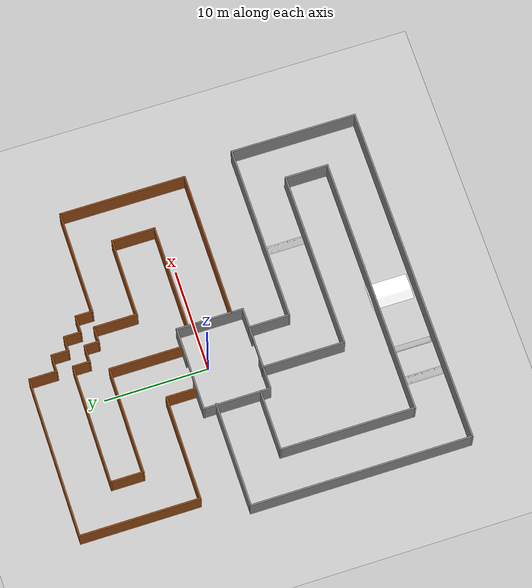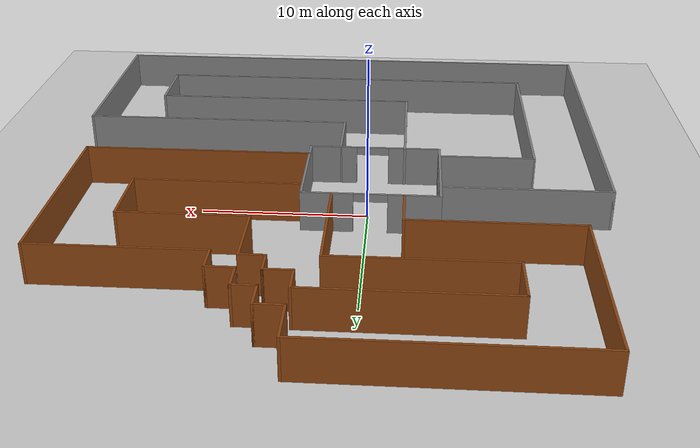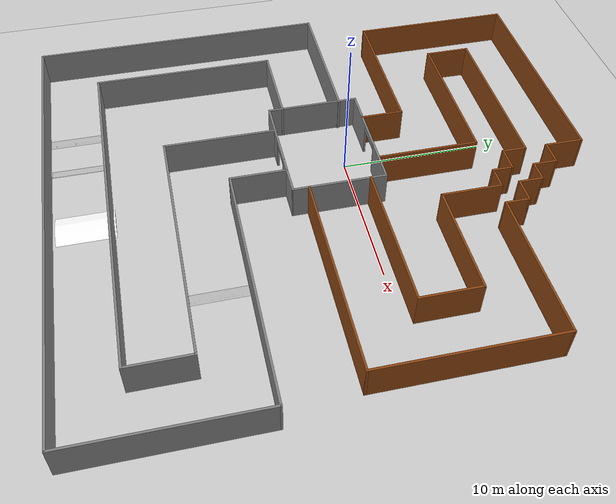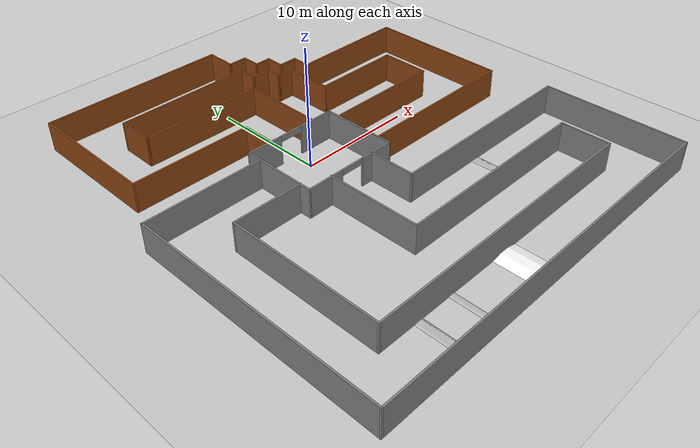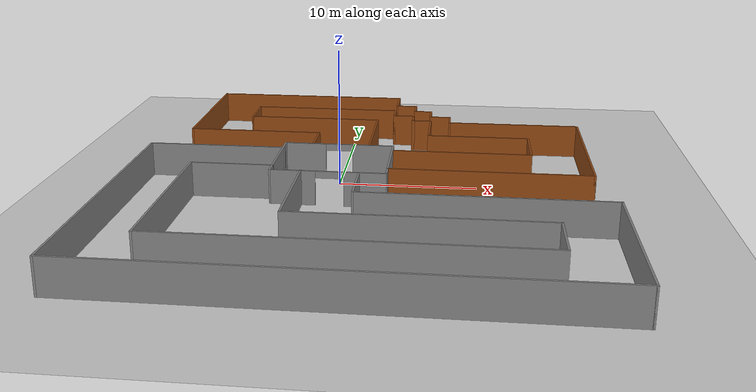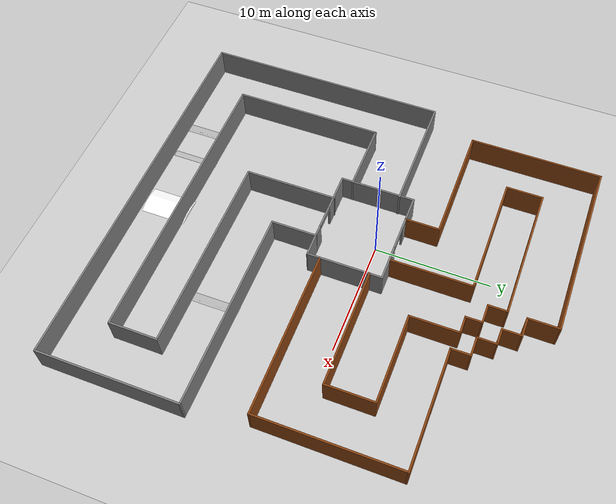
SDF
<sdf version="1.9">
 <world name="empty">
  <model name="ground_plane">
   <static>true</static>
   <link name="link">
    <collision name="collision">
     <geometry><plane><normal>0 0 1</normal><size>100 100</size></plane></geometry>
    </collision>
    <visual name="visual">
     <geometry><plane><normal>0 0 1</normal><size>100 100</size></plane></geometry>
     <material>
      <ambient>0.8 0.8 0.8 1</ambient>
      <diffuse>0.8 0.8 0.8 1</diffuse>
      <specular>0.8 0.8 0.8 1</specular>
     </material>
    </visual>
    <inertial>
     <mass>1</mass>
     <inertia><ixx>1</ixx><ixy>0</ixy><ixz>0</ixz><iyy>1</iyy><iyz>0</iyz><izz>1</izz></inertia>
    </inertial>
   </link>
  </model>
  <model name="speed_bump_2_short">
   <static>true</static>
   <link name="link">
    <collision name="collision">
     <geometry><mesh><uri>models/speed_bump_2_short//bump_1_060.dae</uri></mesh></geometry>
     <surface><friction><ode><mu>0.90000000000000002</mu><mu2>0.59999999999999998</mu2></ode></friction></surface>
    </collision>
    <visual name="visual">
     <geometry><mesh><uri>models/speed_bump_2_short//bump_1_060.dae</uri></mesh></geometry>
    </visual>
    <inertial>
     <mass>1</mass>
     <inertia><ixx>1</ixx><ixy>0</ixy><ixz>0</ixz><iyy>1</iyy><iyz>0</iyz><izz>1</izz></inertia>
    </inertial>
   </link>
   <pose>9.85442 -12.3222 0 0 -0 1.57586</pose>
  </model>
  <model name="ramp_2">
   <static>true</static>
   <link name="link">
    <collision name="collision">
     <geometry><mesh><uri>models/ramp_2//ramp_020.dae</uri></mesh></geometry>
     <surface><friction><ode><mu>0.90000000000000002</mu><mu2>0.59999999999999998</mu2></ode></friction></surface>
    </collision>
    <visual name="visual"><geometry><mesh><uri>models/ramp_2//ramp_020.dae</uri></mesh></geometry></visual>
    <inertial>
     <mass>1</mass>
     <inertia><ixx>1</ixx><ixy>0</ixy><ixz>0</ixz><iyy>1</iyy><iyz>0</iyz><izz>1</izz></inertia>
    </inertial>
   </link>
   <pose>0.806415 -20.267 0 0 -0 0</pose>
  </model>
  <model name="speed_bump_1">
   <static>true</static>
   <link name="link">
    <collision name="collision">
     <geometry><mesh><uri>models/speed_bump_1//bump_1.dae</uri></mesh></geometry>
     <surface><friction><ode><mu>0.90000000000000002</mu><mu2>0.59999999999999998</mu2></ode></friction></surface>
    </collision>
    <visual name="visual"><geometry><mesh><uri>models/speed_bump_1//bump_1.dae</uri></mesh></geometry></visual>
    <inertial>
     <mass>1</mass>
     <inertia><ixx>1</ixx><ixy>0</ixy><ixz>0</ixz><iyy>1</iyy><iyz>0</iyz><izz>1</izz></inertia>
    </inertial>
   </link>
   <pose>-3.19991 -20.3634 0 0 -0 1.57</pose>
  </model>
  <model name="speed_bump_2">
   <static>true</static>
   <link name="link">
    <collision name="collision">
     <geometry><mesh><uri>models/speed_bump_2//bump_2.dae</uri></mesh></geometry>
     <surface><friction><ode><mu>0.90000000000000002</mu><mu2>0.59999999999999998</mu2></ode></friction></surface>
    </collision>
    <visual name="visual"><geometry><mesh><uri>models/speed_bump_2//bump_2.dae</uri></mesh></geometry></visual>
    <inertial>
     <mass>1</mass>
     <inertia><ixx>1</ixx><ixy>0</ixy><ixz>0</ixz><iyy>1</iyy><iyz>0</iyz><izz>1</izz></inertia>
    </inertial>
   </link>
   <pose>-6.25773 -20.421 0 0 -0 1.57</pose>
  </model>
  <model name="indoor_no_doors_2">
   <pose>2.34714 -2.23549 0 0 -0 0</pose>
   <link name="Wall_1">
    <collision name="Wall_1_Collision">
     <geometry><box><size>33.5 0.15 2.5</size></box></geometry>
     <pose>0 0 1.25 0 -0 0</pose>
    </collision>
    <visual name="Wall_1_Visual">
     <pose>0 0 1.25 0 -0 0</pose>
     <geometry><box><size>33.5 0.15 2.5</size></box></geometry>
     <material>
      <ambient>0.5 0.5 0.5 1</ambient>
      <diffuse>0.5 0.5 0.5 1</diffuse>
      <specular>0.2 0.2 0.2 1</specular>
     </material>
     <meta><layer>0</layer></meta>
    </visual>
    <pose>1e-06 -18.2804 0 0 -0 0</pose>
    <inertial>
     <mass>1</mass>
     <inertia><ixx>1</ixx><ixy>0</ixy><ixz>0</ixz><iyy>1</iyy><iyz>0</iyz><izz>1</izz></inertia>
    </inertial>
   </link>
   <link name="Wall_10">
    <collision name="Wall_10_Collision">
     <geometry><box><size>25.25 0.15 2.5</size></box></geometry>
     <pose>0 0 1.25 0 -0 0</pose>
    </collision>
    <visual name="Wall_10_Visual">
     <pose>0 0 1.25 0 -0 0</pose>
     <geometry><box><size>25.25 0.15 2.5</size></box></geometry>
     <material>
      <ambient>0.5 0.5 0.5 1</ambient>
      <diffuse>0.5 0.5 0.5 1</diffuse>
      <specular>0.2 0.2 0.2 1</specular>
     </material>
     <meta><layer>0</layer></meta>
    </visual>
    <pose>0.064266 -14.2262 0 0 -0 3.14159</pose>
    <inertial>
     <mass>1</mass>
     <inertia><ixx>1</ixx><ixy>0</ixy><ixz>0</ixz><iyy>1</iyy><iyz>0</iyz><izz>1</izz></inertia>
    </inertial>
   </link>
   <link name="Wall_11">
    <collision name="Wall_11_Collision">
     <geometry><box><size>13 0.15 2.5</size></box></geometry>
     <pose>0 0 1.25 0 -0 0</pose>
    </collision>
    <visual name="Wall_11_Visual">
     <pose>0 0 1.25 0 -0 0</pose>
     <geometry><box><size>13 0.15 2.5</size></box></geometry>
     <material>
      <ambient>0.5 0.5 0.5 1</ambient>
      <diffuse>0.5 0.5 0.5 1</diffuse>
      <specular>0.2 0.2 0.2 1</specular>
     </material>
     <meta><layer>0</layer></meta>
    </visual>
    <pose>-12.4857 -7.80119 0 0 -0 1.5708</pose>
    <inertial>
     <mass>1</mass>
     <inertia><ixx>1</ixx><ixy>0</ixy><ixz>0</ixz><iyy>1</iyy><iyz>0</iyz><izz>1</izz></inertia>
    </inertial>
   </link>
   <link name="Wall_12">
    <collision name="Wall_12_Collision">
     <geometry><box><size>6 0.15 2.5</size></box></geometry>
     <pose>0 0 1.25 0 -0 0</pose>
    </collision>
    <visual name="Wall_12_Visual">
     <pose>0 0 1.25 0 -0 0</pose>
     <geometry><box><size>6 0.15 2.5</size></box></geometry>
     <material>
      <ambient>0.5 0.5 0.5 1</ambient>
      <diffuse>0.5 0.5 0.5 1</diffuse>
      <specular>0.2 0.2 0.2 1</specular>
     </material>
     <meta><layer>0</layer></meta>
    </visual>
    <pose>-9.56073 -1.37619 0 0 -0 0</pose>
    <inertial>
     <mass>1</mass>
     <inertia><ixx>1</ixx><ixy>0</ixy><ixz>0</ixz><iyy>1</iyy><iyz>0</iyz><izz>1</izz></inertia>
    </inertial>
   </link>
   <link name="Wall_14">
    <collision name="Wall_14_Collision">
     <geometry><box><size>21.25 0.15 2.5</size></box></geometry>
     <pose>0 0 1.25 0 -0 0</pose>
    </collision>
    <visual name="Wall_14_Visual">
     <pose>0 0 1.25 0 -0 0</pose>
     <geometry><box><size>21.25 0.15 2.5</size></box></geometry>
     <material>
      <ambient>0.5 0.5 0.5 1</ambient>
      <diffuse>0.5 0.5 0.5 1</diffuse>
      <specular>0.2 0.2 0.2 1</specular>
     </material>
     <meta><layer>0</layer></meta>
    </visual>
    <pose>-16.675 -7.73042 0 0 -0 1.5708</pose>
    <inertial>
     <mass>1</mass>
     <inertia><ixx>1</ixx><ixy>0</ixy><ixz>0</ixz><iyy>1</iyy><iyz>0</iyz><izz>1</izz></inertia>
    </inertial>
   </link>
   <link name="Wall_15">
    <collision name="Wall_15_Collision">
     <geometry><box><size>10.25 0.15 2.5</size></box></geometry>
     <pose>0 0 1.25 0 -0 0</pose>
    </collision>
    <visual name="Wall_15_Visual">
     <pose>0 0 1.25 0 -0 0</pose>
     <geometry><box><size>10.25 0.15 2.5</size></box></geometry>
     <material>
      <ambient>0.5 0.5 0.5 1</ambient>
      <diffuse>0.5 0.5 0.5 1</diffuse>
      <specular>0.2 0.2 0.2 1</specular>
     </material>
     <meta><layer>0</layer></meta>
    </visual>
    <pose>-11.625 2.81958 0 0 -0 0</pose>
    <inertial>
     <mass>1</mass>
     <inertia><ixx>1</ixx><ixy>0</ixy><ixz>0</ixz><iyy>1</iyy><iyz>0</iyz><izz>1</izz></inertia>
    </inertial>
   </link>
   <link name="Wall_17">
    <collision name="Wall_17_Collision">
     <geometry><box><size>6.5 0.15 2.5</size></box></geometry>
     <pose>0 0 1.25 0 -0 0</pose>
    </collision>
    <visual name="Wall_17_Visual">
     <pose>0 0 1.25 0 -0 0</pose>
     <geometry><box><size>6.5 0.15 2.5</size></box></geometry>
     <material>
      <ambient>0.5 0.5 0.5 1</ambient>
      <diffuse>0.5 0.5 0.5 1</diffuse>
      <specular>0.2 0.2 0.2 1</specular>
     </material>
     <meta><layer>0</layer></meta>
    </visual>
    <pose>-6.65095 0.864976 0 0 0 -1.5708</pose>
    <inertial>
     <mass>1</mass>
     <inertia><ixx>1</ixx><ixy>0</ixy><ixz>0</ixz><iyy>1</iyy><iyz>0</iyz><izz>1</izz></inertia>
    </inertial>
   </link>
   <link name="Wall_2">
    <collision name="Wall_2_Collision">
     <geometry><box><size>12.25 0.15 2.5</size></box></geometry>
     <pose>0 0 1.25 0 -0 0</pose>
    </collision>
    <visual name="Wall_2_Visual">
     <pose>0 0 1.25 0 -0 0</pose>
     <geometry><box><size>12.25 0.15 2.5</size></box></geometry>
     <material>
      <ambient>0.5 0.5 0.5 1</ambient>
      <diffuse>0.5 0.5 0.5 1</diffuse>
      <specular>0.2 0.2 0.2 1</specular>
     </material>
     <meta><layer>0</layer></meta>
    </visual>
    <pose>16.675 -12.2304 0 0 -0 1.5708</pose>
    <inertial>
     <mass>1</mass>
     <inertia><ixx>1</ixx><ixy>0</ixy><ixz>0</ixz><iyy>1</iyy><iyz>0</iyz><izz>1</izz></inertia>
    </inertial>
   </link>
   <link name="Wall_24">
    <pose>-2.60095 4.03998 0 0 -0 0</pose>
    <visual name="Wall_24_Visual_0">
     <pose>-2.55487 0 1.25 0 -0 0</pose>
     <geometry><box><size>3.14026 0.15 2.5</size></box></geometry>
     <material>
      <ambient>0.5 0.5 0.5 1</ambient>
      <diffuse>0.5 0.5 0.5 1</diffuse>
      <specular>0.2 0.2 0.2 1</specular>
     </material>
     <meta><layer>0</layer></meta>
    </visual>
    <collision name="Wall_24_Collision_0">
     <geometry><box><size>3.14026 0.15 2.5</size></box></geometry>
     <pose>-2.55487 0 1.25 0 -0 0</pose>
    </collision>
    <visual name="Wall_24_Visual_1">
     <pose>2.57013 0 1.25 0 -0 0</pose>
     <geometry><box><size>3.10974 0.15 2.5</size></box></geometry>
     <material>
      <ambient>0.5 0.5 0.5 1</ambient>
      <diffuse>0.5 0.5 0.5 1</diffuse>
      <specular>0.2 0.2 0.2 1</specular>
     </material>
     <meta><layer>0</layer></meta>
    </visual>
    <collision name="Wall_24_Collision_1">
     <geometry><box><size>3.10974 0.15 2.5</size></box></geometry>
     <pose>2.57013 0 1.25 0 -0 0</pose>
    </collision>
    <visual name="Wall_24_Visual_2">
     <pose>0.015256 0 2.25 0 -0 0</pose>
     <geometry><box><size>2 0.15 0.5</size></box></geometry>
     <material>
      <ambient>0.5 0.5 0.5 1</ambient>
      <diffuse>0.5 0.5 0.5 1</diffuse>
      <specular>0.2 0.2 0.2 1</specular>
     </material>
     <meta><layer>0</layer></meta>
    </visual>
    <collision name="Wall_24_Collision_2">
     <geometry><box><size>2 0.15 0.5</size></box></geometry>
     <pose>0.015256 0 2.25 0 -0 0</pose>
    </collision>
    <inertial>
     <mass>1</mass>
     <inertia><ixx>1</ixx><ixy>0</ixy><ixz>0</ixz><iyy>1</iyy><iyz>0</iyz><izz>1</izz></inertia>
    </inertial>
   </link>
   <link name="Wall_27">
    <collision name="Wall_27_Collision">
     <geometry><box><size>6.5 0.15 2.5</size></box></geometry>
     <pose>0 0 1.25 0 -0 0</pose>
    </collision>
    <visual name="Wall_27_Visual">
     <pose>0 0 1.25 0 -0 0</pose>
     <geometry><box><size>6.5 0.15 2.5</size></box></geometry>
     <material>
      <ambient>0.5 0.5 0.5 1</ambient>
      <diffuse>0.5 0.5 0.5 1</diffuse>
      <specular>0.2 0.2 0.2 1</specular>
     </material>
     <meta><layer>0</layer></meta>
    </visual>
    <pose>1.44905 0.864976 0 0 0 -1.5708</pose>
    <inertial>
     <mass>1</mass>
     <inertia><ixx>1</ixx><ixy>0</ixy><ixz>0</ixz><iyy>1</iyy><iyz>0</iyz><izz>1</izz></inertia>
    </inertial>
   </link>
   <link name="Wall_29">
    <collision name="Wall_29_Collision">
     <geometry><box><size>2.02416 0.15 2.5</size></box></geometry>
     <pose>0 0 1.25 0 -0 0</pose>
    </collision>
    <visual name="Wall_29_Visual">
     <pose>0 0 1.25 0 -0 0</pose>
     <geometry><box><size>2.02416 0.15 2.5</size></box></geometry>
     <material>
      <ambient>0.5 0.5 0.5 1</ambient>
      <diffuse>0.5 0.5 0.5 1</diffuse>
      <specular>0.2 0.2 0.2 1</specular>
     </material>
     <meta><layer>0</layer></meta>
    </visual>
    <pose>0.512027 -2.32022 0 0 0 -3.13071</pose>
    <inertial>
     <mass>1</mass>
     <inertia><ixx>1</ixx><ixy>0</ixy><ixz>0</ixz><iyy>1</iyy><iyz>0</iyz><izz>1</izz></inertia>
    </inertial>
   </link>
   <link name="Wall_3">
    <collision name="Wall_3_Collision">
     <geometry><box><size>17.25 0.15 2.5</size></box></geometry>
     <pose>0 0 1.25 0 -0 0</pose>
    </collision>
    <visual name="Wall_3_Visual">
     <pose>0 0 1.25 0 -0 0</pose>
     <geometry><box><size>17.25 0.15 2.5</size></box></geometry>
     <material>
      <ambient>0.5 0.5 0.5 1</ambient>
      <diffuse>0.5 0.5 0.5 1</diffuse>
      <specular>0.2 0.2 0.2 1</specular>
     </material>
     <meta><layer>0</layer></meta>
    </visual>
    <pose>8.125 -6.18042 0 0 -0 3.14159</pose>
    <inertial>
     <mass>1</mass>
     <inertia><ixx>1</ixx><ixy>0</ixy><ixz>0</ixz><iyy>1</iyy><iyz>0</iyz><izz>1</izz></inertia>
    </inertial>
   </link>
   <link name="Wall_31">
    <collision name="Wall_31_Collision">
     <geometry><box><size>14.25 0.15 2.5</size></box></geometry>
     <pose>0 0 1.25 0 -0 0</pose>
    </collision>
    <visual name="Wall_31_Visual">
     <pose>0 0 1.25 0 -0 0</pose>
     <geometry><box><size>14.25 0.15 2.5</size></box></geometry>
     <material>
      <ambient>0.55 0.27 0.07 1</ambient>
      <diffuse>0.55 0.27 0.07 1</diffuse>
      <specular>0.2 0.2 0.1 1</specular>
     </material>
     <meta><layer>0</layer></meta>
    </visual>
    <pose>8.54753 -1.21958 0 0 -0 0</pose>
    <inertial>
     <mass>1</mass>
     <inertia><ixx>1</ixx><ixy>0</ixy><ixz>0</ixz><iyy>1</iyy><iyz>0</iyz><izz>1</izz></inertia>
    </inertial>
   </link>
   <link name="Wall_32">
    <collision name="Wall_32_Collision">
     <geometry><box><size>12.25 0.15 2.5</size></box></geometry>
     <pose>0 0 1.25 0 -0 0</pose>
    </collision>
    <visual name="Wall_32_Visual">
     <pose>0 0 1.25 0 -0 0</pose>
     <geometry><box><size>12.25 0.15 2.5</size></box></geometry>
     <material>
      <ambient>0.55 0.27 0.07 1</ambient>
      <diffuse>0.55 0.27 0.07 1</diffuse>
      <specular>0.2 0.2 0.1 1</specular>
     </material>
     <meta><layer>0</layer></meta>
    </visual>
    <pose>15.5975 4.83042 0 0 -0 1.5708</pose>
    <inertial>
     <mass>1</mass>
     <inertia><ixx>1</ixx><ixy>0</ixy><ixz>0</ixz><iyy>1</iyy><iyz>0</iyz><izz>1</izz></inertia>
    </inertial>
   </link>
   <link name="Wall_33">
    <collision name="Wall_33_Collision">
     <geometry><box><size>10.25 0.15 2.5</size></box></geometry>
     <pose>0 0 1.25 0 -0 0</pose>
    </collision>
    <visual name="Wall_33_Visual">
     <pose>0 0 1.25 0 -0 0</pose>
     <geometry><box><size>10.25 0.15 2.5</size></box></geometry>
     <material>
      <ambient>0.55 0.27 0.07 1</ambient>
      <diffuse>0.55 0.27 0.07 1</diffuse>
      <specular>0.2 0.2 0.1 1</specular>
     </material>
     <meta><layer>0</layer></meta>
    </visual>
    <pose>10.5475 10.8804 0 0 -0 3.14159</pose>
    <inertial>
     <mass>1</mass>
     <inertia><ixx>1</ixx><ixy>0</ixy><ixz>0</ixz><iyy>1</iyy><iyz>0</iyz><izz>1</izz></inertia>
    </inertial>
   </link>
   <link name="Wall_35">
    <collision name="Wall_35_Collision">
     <geometry><box><size>4.25 0.15 2.5</size></box></geometry>
     <pose>0 0 1.25 0 -0 0</pose>
    </collision>
    <visual name="Wall_35_Visual">
     <pose>0 0 1.25 0 -0 0</pose>
     <geometry><box><size>4.25 0.15 2.5</size></box></geometry>
     <material>
      <ambient>0.55 0.27 0.07 1</ambient>
      <diffuse>0.55 0.27 0.07 1</diffuse>
      <specular>0.2 0.2 0.1 1</specular>
     </material>
     <meta><layer>0</layer></meta>
    </visual>
    <pose>3.95699 9.13887 0 0 0 -1.5708</pose>
    <inertial>
     <mass>1</mass>
     <inertia><ixx>1</ixx><ixy>0</ixy><ixz>0</ixz><iyy>1</iyy><iyz>0</iyz><izz>1</izz></inertia>
    </inertial>
   </link>
   <link name="Wall_36">
    <collision name="Wall_36_Collision">
     <geometry><box><size>7.75 0.15 2.5</size></box></geometry>
     <pose>0 0 1.25 0 -0 0</pose>
    </collision>
    <visual name="Wall_36_Visual">
     <pose>0 0 1.25 0 -0 0</pose>
     <geometry><box><size>7.75 0.15 2.5</size></box></geometry>
     <material>
      <ambient>0.55 0.27 0.07 1</ambient>
      <diffuse>0.55 0.27 0.07 1</diffuse>
      <specular>0.2 0.2 0.1 1</specular>
     </material>
     <meta><layer>0</layer></meta>
    </visual>
    <pose>7.75699 7.08887 0 0 -0 0</pose>
    <inertial>
     <mass>1</mass>
     <inertia><ixx>1</ixx><ixy>0</ixy><ixz>0</ixz><iyy>1</iyy><iyz>0</iyz><izz>1</izz></inertia>
    </inertial>
   </link>
   <link name="Wall_37">
    <collision name="Wall_37_Collision">
     <geometry><box><size>4.25 0.15 2.5</size></box></geometry>
     <pose>0 0 1.25 0 -0 0</pose>
    </collision>
    <visual name="Wall_37_Visual">
     <pose>0 0 1.25 0 -0 0</pose>
     <geometry><box><size>4.25 0.15 2.5</size></box></geometry>
     <material>
      <ambient>0.55 0.27 0.07 1</ambient>
      <diffuse>0.55 0.27 0.07 1</diffuse>
      <specular>0.2 0.2 0.1 1</specular>
     </material>
     <meta><layer>0</layer></meta>
    </visual>
    <pose>11.557 5.03887 0 0 0 -1.5708</pose>
    <inertial>
     <mass>1</mass>
     <inertia><ixx>1</ixx><ixy>0</ixy><ixz>0</ixz><iyy>1</iyy><iyz>0</iyz><izz>1</izz></inertia>
    </inertial>
   </link>
   <link name="Wall_38">
    <collision name="Wall_38_Collision">
     <geometry><box><size>10.25 0.15 2.5</size></box></geometry>
     <pose>0 0 1.25 0 -0 0</pose>
    </collision>
    <visual name="Wall_38_Visual">
     <pose>0 0 1.25 0 -0 0</pose>
     <geometry><box><size>10.25 0.15 2.5</size></box></geometry>
     <material>
      <ambient>0.55 0.27 0.07 1</ambient>
      <diffuse>0.55 0.27 0.07 1</diffuse>
      <specular>0.2 0.2 0.1 1</specular>
     </material>
     <meta><layer>0</layer></meta>
    </visual>
    <pose>6.50699 2.98887 0 0 -0 3.14159</pose>
    <inertial>
     <mass>1</mass>
     <inertia><ixx>1</ixx><ixy>0</ixy><ixz>0</ixz><iyy>1</iyy><iyz>0</iyz><izz>1</izz></inertia>
    </inertial>
   </link>
   <link name="Wall_4">
    <collision name="Wall_4_Collision">
     <geometry><box><size>4 0.15 2.5</size></box></geometry>
     <pose>0 0 1.25 0 -0 0</pose>
    </collision>
    <visual name="Wall_4_Visual">
     <pose>0 0 1.25 0 -0 0</pose>
     <geometry><box><size>4 0.15 2.5</size></box></geometry>
     <material>
      <ambient>0.5 0.5 0.5 1</ambient>
      <diffuse>0.5 0.5 0.5 1</diffuse>
      <specular>0.2 0.2 0.2 1</specular>
     </material>
     <meta><layer>0</layer></meta>
    </visual>
    <pose>-0.424999 -4.25542 0 0 -0 1.5708</pose>
    <inertial>
     <mass>1</mass>
     <inertia><ixx>1</ixx><ixy>0</ixy><ixz>0</ixz><iyy>1</iyy><iyz>0</iyz><izz>1</izz></inertia>
    </inertial>
   </link>
   <link name="Wall_40">
    <collision name="Wall_40_Collision">
     <geometry><box><size>1.5 0.15 2.5</size></box></geometry>
     <pose>0 0 1.25 0 -0 0</pose>
    </collision>
    <visual name="Wall_40_Visual">
     <pose>0 0 1.25 0 -0 0</pose>
     <geometry><box><size>1.5 0.15 2.5</size></box></geometry>
     <material>
      <ambient>0.55 0.27 0.07 1</ambient>
      <diffuse>0.55 0.27 0.07 1</diffuse>
      <specular>0.2 0.2 0.1 1</specular>
     </material>
     <meta><layer>0</layer></meta>
    </visual>
    <pose>3.28199 11.1889 0 0 -0 3.14159</pose>
    <inertial>
     <mass>1</mass>
     <inertia><ixx>1</ixx><ixy>0</ixy><ixz>0</ixz><iyy>1</iyy><iyz>0</iyz><izz>1</izz></inertia>
    </inertial>
   </link>
   <link name="Wall_41">
    <collision name="Wall_41_Collision">
     <geometry><box><size>0.25 0.15 2.5</size></box></geometry>
     <pose>0 0 1.25 0 -0 0</pose>
    </collision>
    <visual name="Wall_41_Visual">
     <pose>0 0 1.25 0 -0 0</pose>
     <geometry><box><size>0.25 0.15 2.5</size></box></geometry>
     <material>
      <ambient>0.55 0.27 0.07 1</ambient>
      <diffuse>0.55 0.27 0.07 1</diffuse>
      <specular>0.2 0.2 0.1 1</specular>
     </material>
     <meta><layer>0</layer></meta>
    </visual>
    <pose>2.55699 11.1889 0 0 -0 3.14159</pose>
    <inertial>
     <mass>1</mass>
     <inertia><ixx>1</ixx><ixy>0</ixy><ixz>0</ixz><iyy>1</iyy><iyz>0</iyz><izz>1</izz></inertia>
    </inertial>
   </link>
   <link name="Wall_42">
    <collision name="Wall_42_Collision">
     <geometry><box><size>1.5 0.15 2.5</size></box></geometry>
     <pose>0 0 1.25 0 -0 0</pose>
    </collision>
    <visual name="Wall_42_Visual">
     <pose>0 0 1.25 0 -0 0</pose>
     <geometry><box><size>1.5 0.15 2.5</size></box></geometry>
     <material>
      <ambient>0.55 0.27 0.07 1</ambient>
      <diffuse>0.55 0.27 0.07 1</diffuse>
      <specular>0.2 0.2 0.1 1</specular>
     </material>
     <meta><layer>0</layer></meta>
    </visual>
    <pose>2.50699 11.8639 0 0 -0 1.5708</pose>
    <inertial>
     <mass>1</mass>
     <inertia><ixx>1</ixx><ixy>0</ixy><ixz>0</ixz><iyy>1</iyy><iyz>0</iyz><izz>1</izz></inertia>
    </inertial>
   </link>
   <link name="Wall_43">
    <collision name="Wall_43_Collision">
     <geometry><box><size>0.15 0.15 2.5</size></box></geometry>
     <pose>0 0 1.25 0 -0 0</pose>
    </collision>
    <visual name="Wall_43_Visual">
     <pose>0 0 1.25 0 -0 0</pose>
     <geometry><box><size>0.15 0.15 2.5</size></box></geometry>
     <material>
      <ambient>0.55 0.27 0.07 1</ambient>
      <diffuse>0.55 0.27 0.07 1</diffuse>
      <specular>0.2 0.2 0.1 1</specular>
     </material>
     <meta><layer>0</layer></meta>
    </visual>
    <pose>2.50699 12.5389 0 0 -0 0</pose>
    <inertial>
     <mass>1</mass>
     <inertia><ixx>1</ixx><ixy>0</ixy><ixz>0</ixz><iyy>1</iyy><iyz>0</iyz><izz>1</izz></inertia>
    </inertial>
   </link>
   <link name="Wall_44">
    <collision name="Wall_44_Collision">
     <geometry><box><size>1.75 0.15 2.5</size></box></geometry>
     <pose>0 0 1.25 0 -0 0</pose>
    </collision>
    <visual name="Wall_44_Visual">
     <pose>0 0 1.25 0 -0 0</pose>
     <geometry><box><size>1.75 0.15 2.5</size></box></geometry>
     <material>
      <ambient>0.55 0.27 0.07 1</ambient>
      <diffuse>0.55 0.27 0.07 1</diffuse>
      <specular>0.2 0.2 0.1 1</specular>
     </material>
     <meta><layer>0</layer></meta>
    </visual>
    <pose>1.70699 12.5389 0 0 -0 3.14159</pose>
    <inertial>
     <mass>1</mass>
     <inertia><ixx>1</ixx><ixy>0</ixy><ixz>0</ixz><iyy>1</iyy><iyz>0</iyz><izz>1</izz></inertia>
    </inertial>
   </link>
   <link name="Wall_46">
    <collision name="Wall_46_Collision">
     <geometry><box><size>1.75 0.15 2.5</size></box></geometry>
     <pose>0 0 1.25 0 -0 0</pose>
    </collision>
    <visual name="Wall_46_Visual">
     <pose>0 0 1.25 0 -0 0</pose>
     <geometry><box><size>1.75 0.15 2.5</size></box></geometry>
     <material>
      <ambient>0.55 0.27 0.07 1</ambient>
      <diffuse>0.55 0.27 0.07 1</diffuse>
      <specular>0.2 0.2 0.1 1</specular>
     </material>
     <meta><layer>0</layer></meta>
    </visual>
    <pose>0.906992 13.3389 0 0 -0 1.5708</pose>
    <inertial>
     <mass>1</mass>
     <inertia><ixx>1</ixx><ixy>0</ixy><ixz>0</ixz><iyy>1</iyy><iyz>0</iyz><izz>1</izz></inertia>
    </inertial>
   </link>
   <link name="Wall_48">
    <collision name="Wall_48_Collision">
     <geometry><box><size>11.75 0.15 2.5</size></box></geometry>
     <pose>0 0 1.25 0 -0 0</pose>
    </collision>
    <visual name="Wall_48_Visual">
     <pose>0 0 1.25 0 -0 0</pose>
     <geometry><box><size>11.75 0.15 2.5</size></box></geometry>
     <material>
      <ambient>0.55 0.27 0.07 1</ambient>
      <diffuse>0.55 0.27 0.07 1</diffuse>
      <specular>0.2 0.2 0.1 1</specular>
     </material>
     <meta><layer>0</layer></meta>
    </visual>
    <pose>-4.89301 14.1389 0 0 -0 3.14159</pose>
    <inertial>
     <mass>1</mass>
     <inertia><ixx>1</ixx><ixy>0</ixy><ixz>0</ixz><iyy>1</iyy><iyz>0</iyz><izz>1</izz></inertia>
    </inertial>
   </link>
   <link name="Wall_49">
    <collision name="Wall_49_Collision">
     <geometry><box><size>3.25 0.15 2.5</size></box></geometry>
     <pose>0 0 1.25 0 -0 0</pose>
    </collision>
    <visual name="Wall_49_Visual">
     <pose>0 0 1.25 0 -0 0</pose>
     <geometry><box><size>3.25 0.15 2.5</size></box></geometry>
     <material>
      <ambient>0.55 0.27 0.07 1</ambient>
      <diffuse>0.55 0.27 0.07 1</diffuse>
      <specular>0.2 0.2 0.1 1</specular>
     </material>
     <meta><layer>0</layer></meta>
    </visual>
    <pose>-10.693 12.5889 0 0 0 -1.5708</pose>
    <inertial>
     <mass>1</mass>
     <inertia><ixx>1</ixx><ixy>0</ixy><ixz>0</ixz><iyy>1</iyy><iyz>0</iyz><izz>1</izz></inertia>
    </inertial>
   </link>
   <link name="Wall_5">
    <pose>-3.475 -2.33042 0 0 -0 3.14159</pose>
    <visual name="Wall_5_Visual_0">
     <pose>-2.57115 0 1.25 0 -0 0</pose>
     <geometry><box><size>1.1077 0.15 2.5</size></box></geometry>
     <material>
      <ambient>0.5 0.5 0.5 1</ambient>
      <diffuse>0.5 0.5 0.5 1</diffuse>
      <specular>0.2 0.2 0.2 1</specular>
     </material>
     <meta><layer>0</layer></meta>
    </visual>
    <collision name="Wall_5_Collision_0">
     <geometry><box><size>1.1077 0.15 2.5</size></box></geometry>
     <pose>-2.57115 0 1.25 0 -0 0</pose>
    </collision>
    <visual name="Wall_5_Visual_1">
     <pose>1.55385 0 1.25 0 -0 0</pose>
     <geometry><box><size>3.1423 0.15 2.5</size></box></geometry>
     <material>
      <ambient>0.5 0.5 0.5 1</ambient>
      <diffuse>0.5 0.5 0.5 1</diffuse>
      <specular>0.2 0.2 0.2 1</specular>
     </material>
     <meta><layer>0</layer></meta>
    </visual>
    <collision name="Wall_5_Collision_1">
     <geometry><box><size>3.1423 0.15 2.5</size></box></geometry>
     <pose>1.55385 0 1.25 0 -0 0</pose>
    </collision>
    <visual name="Wall_5_Visual_2">
     <pose>-1.0173 0 2.25 0 -0 0</pose>
     <geometry><box><size>2 0.15 0.5</size></box></geometry>
     <material>
      <ambient>0.5 0.5 0.5 1</ambient>
      <diffuse>0.5 0.5 0.5 1</diffuse>
      <specular>0.2 0.2 0.2 1</specular>
     </material>
     <meta><layer>0</layer></meta>
    </visual>
    <collision name="Wall_5_Collision_2">
     <geometry><box><size>2 0.15 0.5</size></box></geometry>
     <pose>-1.0173 0 2.25 0 -0 0</pose>
    </collision>
    <inertial>
     <mass>1</mass>
     <inertia><ixx>1</ixx><ixy>0</ixy><ixz>0</ixz><iyy>1</iyy><iyz>0</iyz><izz>1</izz></inertia>
    </inertial>
   </link>
   <link name="Wall_50">
    <collision name="Wall_50_Collision">
     <geometry><box><size>10.5 0.15 2.5</size></box></geometry>
     <pose>0 0 1.25 0 -0 0</pose>
    </collision>
    <visual name="Wall_50_Visual">
     <pose>0 0 1.25 0 -0 0</pose>
     <geometry><box><size>10.5 0.15 2.5</size></box></geometry>
     <material>
      <ambient>0.55 0.27 0.07 1</ambient>
      <diffuse>0.55 0.27 0.07 1</diffuse>
      <specular>0.2 0.2 0.1 1</specular>
     </material>
     <meta><layer>0</layer></meta>
    </visual>
    <pose>-5.51801 11.0389 0 0 -0 0</pose>
    <inertial>
     <mass>1</mass>
     <inertia><ixx>1</ixx><ixy>0</ixy><ixz>0</ixz><iyy>1</iyy><iyz>0</iyz><izz>1</izz></inertia>
    </inertial>
   </link>
   <link name="Wall_52">
    <collision name="Wall_52_Collision">
     <geometry><box><size>7 0.15 2.5</size></box></geometry>
     <pose>0 0 1.25 0 -0 0</pose>
    </collision>
    <visual name="Wall_52_Visual">
     <pose>0 0 1.25 0 -0 0</pose>
     <geometry><box><size>7 0.15 2.5</size></box></geometry>
     <material>
      <ambient>0.55 0.27 0.07 1</ambient>
      <diffuse>0.55 0.27 0.07 1</diffuse>
      <specular>0.2 0.2 0.1 1</specular>
     </material>
     <meta><layer>0</layer></meta>
    </visual>
    <pose>-0.343008 7.61387 0 0 0 -1.5708</pose>
    <inertial>
     <mass>1</mass>
     <inertia><ixx>1</ixx><ixy>0</ixy><ixz>0</ixz><iyy>1</iyy><iyz>0</iyz><izz>1</izz></inertia>
    </inertial>
   </link>
   <link name="Wall_54">
    <collision name="Wall_54_Collision">
     <geometry><box><size>1.75 0.15 2.5</size></box></geometry>
     <pose>0 0 1.25 0 -0 0</pose>
    </collision>
    <visual name="Wall_54_Visual">
     <pose>0 0 1.25 0 -0 0</pose>
     <geometry><box><size>1.75 0.15 2.5</size></box></geometry>
     <material>
      <ambient>0.55 0.27 0.07 1</ambient>
      <diffuse>0.55 0.27 0.07 1</diffuse>
      <specular>0.2 0.2 0.1 1</specular>
     </material>
     <meta><layer>0</layer></meta>
    </visual>
    <pose>5.49753 11.6804 0 0 -0 1.5708</pose>
    <inertial>
     <mass>1</mass>
     <inertia><ixx>1</ixx><ixy>0</ixy><ixz>0</ixz><iyy>1</iyy><iyz>0</iyz><izz>1</izz></inertia>
    </inertial>
   </link>
   <link name="Wall_55">
    <collision name="Wall_55_Collision">
     <geometry><box><size>1.75 0.15 2.5</size></box></geometry>
     <pose>0 0 1.25 0 -0 0</pose>
    </collision>
    <visual name="Wall_55_Visual">
     <pose>0 0 1.25 0 -0 0</pose>
     <geometry><box><size>1.75 0.15 2.5</size></box></geometry>
     <material>
      <ambient>0.55 0.27 0.07 1</ambient>
      <diffuse>0.55 0.27 0.07 1</diffuse>
      <specular>0.2 0.2 0.1 1</specular>
     </material>
     <meta><layer>0</layer></meta>
    </visual>
    <pose>4.69753 12.4804 0 0 -0 3.14159</pose>
    <inertial>
     <mass>1</mass>
     <inertia><ixx>1</ixx><ixy>0</ixy><ixz>0</ixz><iyy>1</iyy><iyz>0</iyz><izz>1</izz></inertia>
    </inertial>
   </link>
   <link name="Wall_56">
    <collision name="Wall_56_Collision">
     <geometry><box><size>1.75 0.15 2.5</size></box></geometry>
     <pose>0 0 1.25 0 -0 0</pose>
    </collision>
    <visual name="Wall_56_Visual">
     <pose>0 0 1.25 0 -0 0</pose>
     <geometry><box><size>1.75 0.15 2.5</size></box></geometry>
     <material>
      <ambient>0.55 0.27 0.07 1</ambient>
      <diffuse>0.55 0.27 0.07 1</diffuse>
      <specular>0.2 0.2 0.1 1</specular>
     </material>
     <meta><layer>0</layer></meta>
    </visual>
    <pose>3.89753 13.2804 0 0 -0 1.5708</pose>
    <inertial>
     <mass>1</mass>
     <inertia><ixx>1</ixx><ixy>0</ixy><ixz>0</ixz><iyy>1</iyy><iyz>0</iyz><izz>1</izz></inertia>
    </inertial>
   </link>
   <link name="Wall_57">
    <collision name="Wall_57_Collision">
     <geometry><box><size>1.5 0.15 2.5</size></box></geometry>
     <pose>0 0 1.25 0 -0 0</pose>
    </collision>
    <visual name="Wall_57_Visual">
     <pose>0 0 1.25 0 -0 0</pose>
     <geometry><box><size>1.5 0.15 2.5</size></box></geometry>
     <material>
      <ambient>0.55 0.27 0.07 1</ambient>
      <diffuse>0.55 0.27 0.07 1</diffuse>
      <specular>0.2 0.2 0.1 1</specular>
     </material>
     <meta><layer>0</layer></meta>
    </visual>
    <pose>3.22253 14.0804 0 0 -0 3.14159</pose>
    <inertial>
     <mass>1</mass>
     <inertia><ixx>1</ixx><ixy>0</ixy><ixz>0</ixz><iyy>1</iyy><iyz>0</iyz><izz>1</izz></inertia>
    </inertial>
   </link>
   <link name="Wall_58">
    <collision name="Wall_58_Collision">
     <geometry><box><size>1.75 0.15 2.5</size></box></geometry>
     <pose>0 0 1.25 0 -0 0</pose>
    </collision>
    <visual name="Wall_58_Visual">
     <pose>0 0 1.25 0 -0 0</pose>
     <geometry><box><size>1.75 0.15 2.5</size></box></geometry>
     <material>
      <ambient>0.55 0.27 0.07 1</ambient>
      <diffuse>0.55 0.27 0.07 1</diffuse>
      <specular>0.2 0.2 0.1 1</specular>
     </material>
     <meta><layer>0</layer></meta>
    </visual>
    <pose>2.54753 14.8804 0 0 -0 1.5708</pose>
    <inertial>
     <mass>1</mass>
     <inertia><ixx>1</ixx><ixy>0</ixy><ixz>0</ixz><iyy>1</iyy><iyz>0</iyz><izz>1</izz></inertia>
    </inertial>
   </link>
   <link name="Wall_59">
    <collision name="Wall_59_Collision">
     <geometry><box><size>1.75 0.15 2.5</size></box></geometry>
     <pose>0 0 1.25 0 -0 0</pose>
    </collision>
    <visual name="Wall_59_Visual">
     <pose>0 0 1.25 0 -0 0</pose>
     <geometry><box><size>1.75 0.15 2.5</size></box></geometry>
     <material>
      <ambient>0.55 0.27 0.07 1</ambient>
      <diffuse>0.55 0.27 0.07 1</diffuse>
      <specular>0.2 0.2 0.1 1</specular>
     </material>
     <meta><layer>0</layer></meta>
    </visual>
    <pose>1.74753 15.6804 0 0 -0 3.14159</pose>
    <inertial>
     <mass>1</mass>
     <inertia><ixx>1</ixx><ixy>0</ixy><ixz>0</ixz><iyy>1</iyy><iyz>0</iyz><izz>1</izz></inertia>
    </inertial>
   </link>
   <link name="Wall_60">
    <collision name="Wall_60_Collision">
     <geometry><box><size>2.75 0.15 2.5</size></box></geometry>
     <pose>0 0 1.25 0 -0 0</pose>
    </collision>
    <visual name="Wall_60_Visual">
     <pose>0 0 1.25 0 -0 0</pose>
     <geometry><box><size>2.75 0.15 2.5</size></box></geometry>
     <material>
      <ambient>0.55 0.27 0.07 1</ambient>
      <diffuse>0.55 0.27 0.07 1</diffuse>
      <specular>0.2 0.2 0.1 1</specular>
     </material>
     <meta><layer>0</layer></meta>
    </visual>
    <pose>0.94753 16.9804 0 0 -0 1.5708</pose>
    <inertial>
     <mass>1</mass>
     <inertia><ixx>1</ixx><ixy>0</ixy><ixz>0</ixz><iyy>1</iyy><iyz>0</iyz><izz>1</izz></inertia>
    </inertial>
   </link>
   <link name="Wall_61">
    <collision name="Wall_61_Collision">
     <geometry><box><size>15.75 0.15 2.5</size></box></geometry>
     <pose>0 0 1.25 0 -0 0</pose>
    </collision>
    <visual name="Wall_61_Visual">
     <pose>0 0 1.25 0 -0 0</pose>
     <geometry><box><size>15.75 0.15 2.5</size></box></geometry>
     <material>
      <ambient>0.55 0.27 0.07 1</ambient>
      <diffuse>0.55 0.27 0.07 1</diffuse>
      <specular>0.2 0.2 0.1 1</specular>
     </material>
     <meta><layer>0</layer></meta>
    </visual>
    <pose>-6.85247 18.2804 0 0 -0 3.14159</pose>
    <inertial>
     <mass>1</mass>
     <inertia><ixx>1</ixx><ixy>0</ixy><ixz>0</ixz><iyy>1</iyy><iyz>0</iyz><izz>1</izz></inertia>
    </inertial>
   </link>
   <link name="Wall_62">
    <collision name="Wall_62_Collision">
     <geometry><box><size>11.5 0.15 2.5</size></box></geometry>
     <pose>0 0 1.25 0 -0 0</pose>
    </collision>
    <visual name="Wall_62_Visual">
     <pose>0 0 1.25 0 -0 0</pose>
     <geometry><box><size>11.5 0.15 2.5</size></box></geometry>
     <material>
      <ambient>0.55 0.27 0.07 1</ambient>
      <diffuse>0.55 0.27 0.07 1</diffuse>
      <specular>0.2 0.2 0.1 1</specular>
     </material>
     <meta><layer>0</layer></meta>
    </visual>
    <pose>-14.6525 12.6054 0 0 0 -1.5708</pose>
    <inertial>
     <mass>1</mass>
     <inertia><ixx>1</ixx><ixy>0</ixy><ixz>0</ixz><iyy>1</iyy><iyz>0</iyz><izz>1</izz></inertia>
    </inertial>
   </link>
   <link name="Wall_63">
    <collision name="Wall_63_Collision">
     <geometry><box><size>10.25 0.15 2.5</size></box></geometry>
     <pose>0 0 1.25 0 -0 0</pose>
    </collision>
    <visual name="Wall_63_Visual">
     <pose>0 0 1.25 0 -0 0</pose>
     <geometry><box><size>10.25 0.15 2.5</size></box></geometry>
     <material>
      <ambient>0.55 0.27 0.07 1</ambient>
      <diffuse>0.55 0.27 0.07 1</diffuse>
      <specular>0.2 0.2 0.1 1</specular>
     </material>
     <meta><layer>0</layer></meta>
    </visual>
    <pose>-9.60247 6.93042 0 0 -0 0</pose>
    <inertial>
     <mass>1</mass>
     <inertia><ixx>1</ixx><ixy>0</ixy><ixz>0</ixz><iyy>1</iyy><iyz>0</iyz><izz>1</izz></inertia>
    </inertial>
   </link>
   <link name="Wall_65">
    <collision name="Wall_65_Collision">
     <geometry><box><size>3 0.15 2.5</size></box></geometry>
     <pose>0 0 1.25 0 -0 0</pose>
    </collision>
    <visual name="Wall_65_Visual">
     <pose>0 0 1.25 0 -0 0</pose>
     <geometry><box><size>3 0.15 2.5</size></box></geometry>
     <material>
      <ambient>0.55 0.27 0.07 1</ambient>
      <diffuse>0.55 0.27 0.07 1</diffuse>
      <specular>0.2 0.2 0.1 1</specular>
     </material>
     <meta><layer>0</layer></meta>
    </visual>
    <pose>-4.55247 5.50542 0 0 0 -1.5708</pose>
    <inertial>
     <mass>1</mass>
     <inertia><ixx>1</ixx><ixy>0</ixy><ixz>0</ixz><iyy>1</iyy><iyz>0</iyz><izz>1</izz></inertia>
    </inertial>
   </link>
   <link name="Wall_7">
    <collision name="Wall_7_Collision">
     <geometry><box><size>8 0.15 2.5</size></box></geometry>
     <pose>0 0 1.25 0 -0 0</pose>
    </collision>
    <visual name="Wall_7_Visual">
     <pose>0 0 1.25 0 -0 0</pose>
     <geometry><box><size>8 0.15 2.5</size></box></geometry>
     <material>
      <ambient>0.5 0.5 0.5 1</ambient>
      <diffuse>0.5 0.5 0.5 1</diffuse>
      <specular>0.2 0.2 0.2 1</specular>
     </material>
     <meta><layer>0</layer></meta>
    </visual>
    <pose>-4.48573 -6.20119 0 0 0 -1.5708</pose>
    <inertial>
     <mass>1</mass>
     <inertia><ixx>1</ixx><ixy>0</ixy><ixz>0</ixz><iyy>1</iyy><iyz>0</iyz><izz>1</izz></inertia>
    </inertial>
   </link>
   <link name="Wall_8">
    <collision name="Wall_8_Collision">
     <geometry><box><size>17.25 0.15 2.5</size></box></geometry>
     <pose>0 0 1.25 0 -0 0</pose>
    </collision>
    <visual name="Wall_8_Visual">
     <pose>0 0 1.25 0 -0 0</pose>
     <geometry><box><size>17.25 0.15 2.5</size></box></geometry>
     <material>
      <ambient>0.5 0.5 0.5 1</ambient>
      <diffuse>0.5 0.5 0.5 1</diffuse>
      <specular>0.2 0.2 0.2 1</specular>
     </material>
     <meta><layer>0</layer></meta>
    </visual>
    <pose>4.06427 -10.1262 0 0 -0 0</pose>
    <inertial>
     <mass>1</mass>
     <inertia><ixx>1</ixx><ixy>0</ixy><ixz>0</ixz><iyy>1</iyy><iyz>0</iyz><izz>1</izz></inertia>
    </inertial>
   </link>
   <link name="Wall_9">
    <collision name="Wall_9_Collision">
     <geometry><box><size>4.25 0.15 2.5</size></box></geometry>
     <pose>0 0 1.25 0 -0 0</pose>
    </collision>
    <visual name="Wall_9_Visual">
     <pose>0 0 1.25 0 -0 0</pose>
     <geometry><box><size>4.25 0.15 2.5</size></box></geometry>
     <material>
      <ambient>0.5 0.5 0.5 1</ambient>
      <diffuse>0.5 0.5 0.5 1</diffuse>
      <specular>0.2 0.2 0.2 1</specular>
     </material>
     <meta><layer>0</layer></meta>
    </visual>
    <pose>12.6143 -12.1762 0 0 0 -1.5708</pose>
    <inertial>
     <mass>1</mass>
     <inertia><ixx>1</ixx><ixy>0</ixy><ixz>0</ixz><iyy>1</iyy><iyz>0</iyz><izz>1</izz></inertia>
    </inertial>
   </link>
   <static>true</static>
  </model>
 </world>
</sdf>
